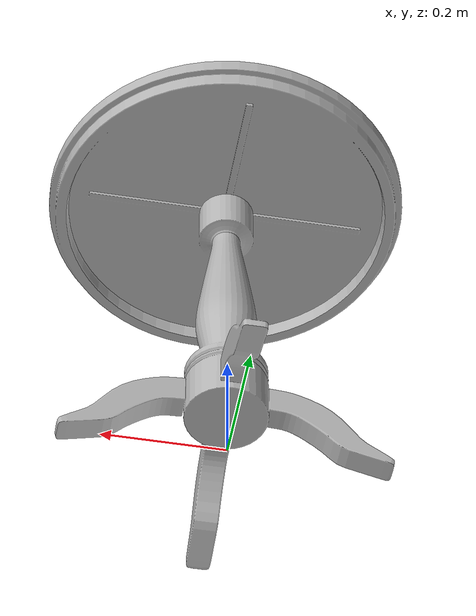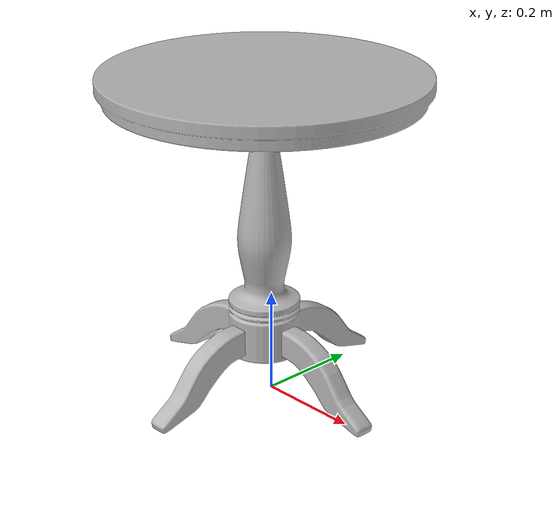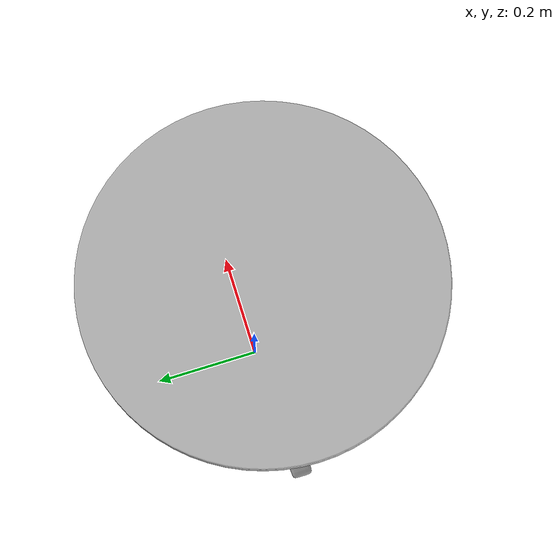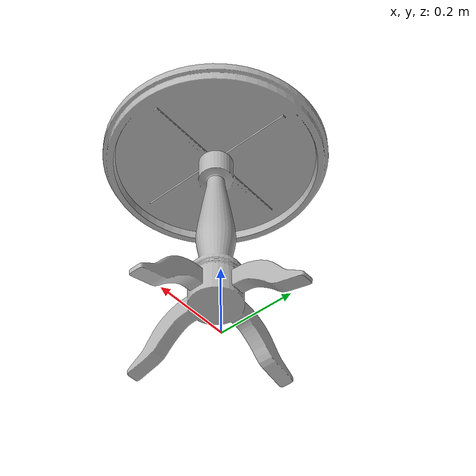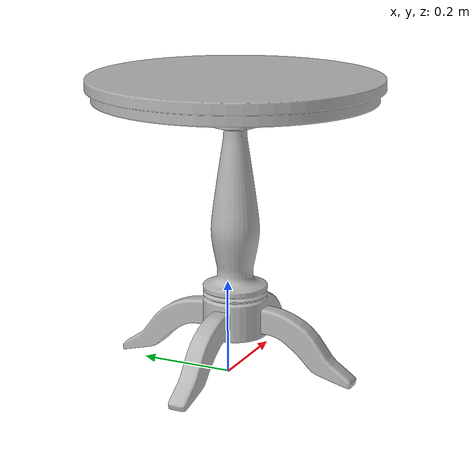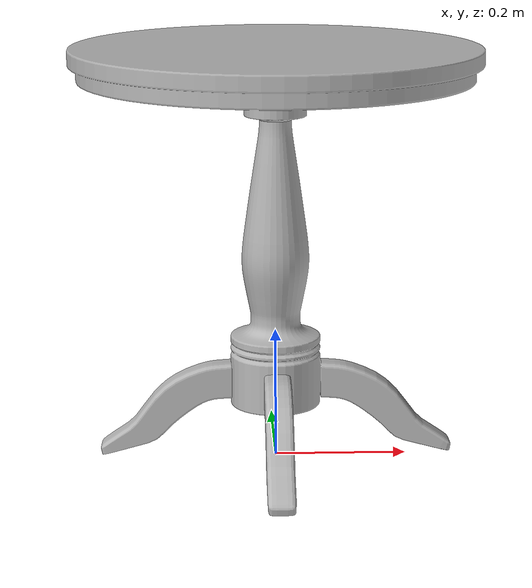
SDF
<?xml version='1.0'?>
<sdf version='1.5'>
    <model name='tree'>
        <static>true</static>
        <link name="curve1">
            <visual name="visual">
                <geometry>
                    <mesh>
                        <uri>model://table/sdf/table.dae</uri>
                    </mesh>
                </geometry>
            </visual>
            <collision name="collision">
                <geometry>
                    <mesh>
                        <uri>model://table/sdf/table.dae</uri>
                    </mesh>
                </geometry>
            </collision>
        </link>
    </model>
</sdf>
